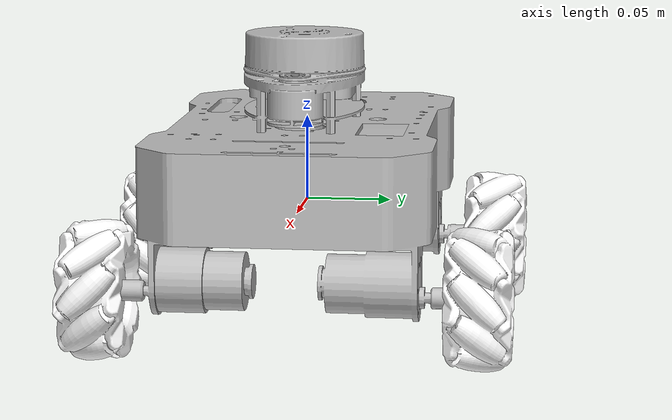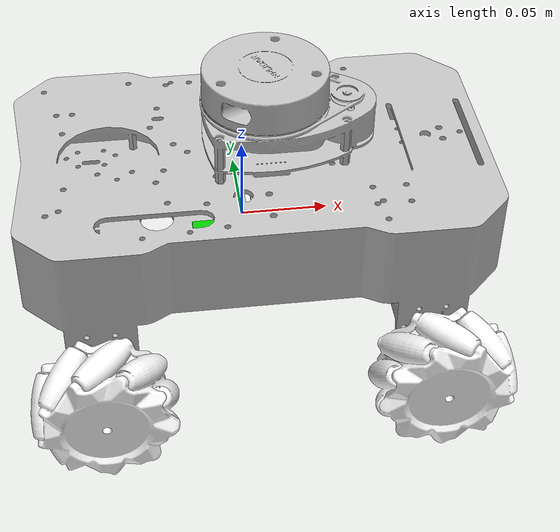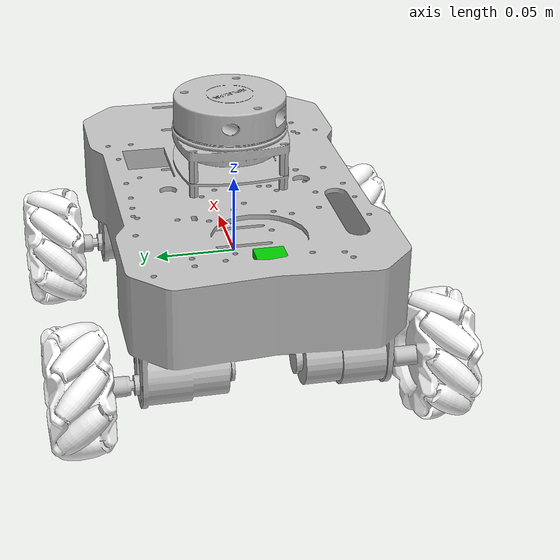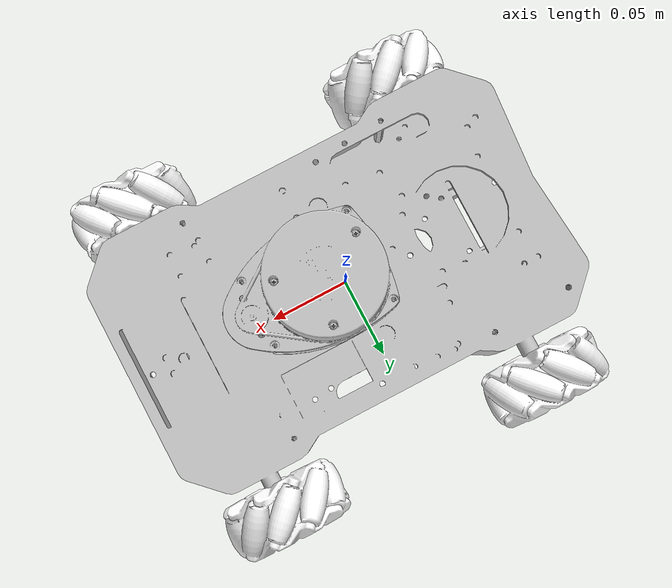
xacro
<?xml version="1.0"?>
<robot name="robmini" xmlns:xacro="http://www.ros.org/wiki/xacro">
    <!-- 添加参数声明 -->
    <xacro:arg name="prefix" default=""/>
    <xacro:arg name="namespace" default=""/>
    <xacro:arg name="use_mock" default="false"/>
    <xacro:arg name="use_gazebo" default="false"/>
    <xacro:arg name="sim_drive_mode" default="planar"/>  <!-- /ros2_control-->
    <xacro:arg name="controller_config" default=""/>

    <!-- 获取参数值 -->
    <xacro:property name="prefix" value="$(arg prefix)" />
    <xacro:property name="ros_namespace" value="$(arg namespace)" />
    <xacro:property name="use_mock" value="$(arg use_mock)" />
    <xacro:property name="use_gazebo" value="$(arg use_gazebo)" />
    <xacro:property name="sim_drive_mode" value="$(arg sim_drive_mode)" />
    <xacro:property name="controller_config" value="$(arg controller_config)" />

    <!-- TF 前缀处理保持不变 -->
    <xacro:if value="${prefix == '/' or prefix == '' or prefix == ' '}">
        <xacro:property name="tf_prefix" value="" />
    </xacro:if>
    <xacro:unless value="${prefix == '/' or prefix == '' or prefix == ' '}">
        <xacro:property name="tf_prefix" value="${prefix}/" />
    </xacro:unless>

    <!-- 使用传统 find 语法 -->
    <xacro:include filename="$(find robmini_description)/urdf/robmini.urdf.xacro" />
    <xacro:include filename="$(find robmini_description)/urdf/lidar_gazebo.xacro" />
    <xacro:include filename="$(find robmini_description)/urdf/robmini.ros2_control.xacro" />
    <!-- 宏调用保持不变 -->
    <xacro:robmini_ros2_control
    use_mock_bool="${str(use_mock).lower() in ['true', '1', 'yes', 'on']}"
    use_gazebo_bool="${str(use_gazebo).lower() in ['true', '1', 'yes', 'on']}"
    sim_drive_mode="${sim_drive_mode}"
    controller_config="${controller_config}"
    ros_namespace="${ros_namespace}"
    frame_prefix="${tf_prefix}" />
</robot>

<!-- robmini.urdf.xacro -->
<robot xmlns:xacro="http://www.ros.org/wiki/xacro">
  <xacro:property name="mesh_dir" value="file://$(find robmini_description)/meshes" />
  <xacro:property
    name="use_planar_drive"
    value="${str(use_gazebo).lower() in ['true', '1', 'yes', 'on'] and sim_drive_mode == 'planar'}" />
  <xacro:property name="planar_wheel_collision_radius" value="0.04" />
  <xacro:property name="wheel_ground_mu" value="${0.02 if use_planar_drive else 1.5}" />
  <xacro:property name="wheel_ground_mu2" value="${0.02 if use_planar_drive else 1.2}" />
  <xacro:property name="wheel_ground_slip" value="${1.0 if use_planar_drive else 0.0}" />

  <link
    name="${tf_prefix}base_link">
    <inertial>
      <origin
        xyz="0.00642718102494587 0.000182152311766697 0.0006273474275044"
        rpy="0 0 0" />
      <mass
        value="0.566394170985771" />
      <inertia
        ixx="0.00105406060554873"
        ixy="1.36846218301613E-05"
        ixz="-7.10562527190778E-06"
        iyy="0.00239067878191228"
        iyz="4.45402070926371E-07"
        izz="0.00328565602241862" />
    </inertial>
    <visual>
      <origin
        xyz="0 0 0"
        rpy="0 0 0" />
      <geometry>
        <mesh filename="${mesh_dir}/base_link.STL" />
      </geometry>
      <material
        name="">
        <color
          rgba="0.752941176470588 0.752941176470588 0.752941176470588 1" />
      </material>
    </visual>
    <collision>
      <origin
        xyz="0 0 0"
        rpy="0 0 0" />
      <geometry>
        <mesh filename="${mesh_dir}/base_link.STL" />
      </geometry>
    </collision>
  </link>
  <link
    name="${tf_prefix}front_left_wheel_link">
    <inertial>
      <origin
        xyz="0 0 0"
        rpy="0 0 0" />
      <mass
        value="0.63948" />
      <inertia
        ixx="0.0025437"
        ixy="2.7123E-05"
        ixz="-0.00010496"
        iyy="0.0053311"
        iyz="1.0534E-05"
        izz="0.006151" />
    </inertial>
    <visual>
      <origin
        xyz="0 0 0"
        rpy="0 0 0" />
      <geometry>
        <mesh filename="${mesh_dir}/left_front_wheel_link.STL" />
      </geometry>
      <material
        name="">
        <color
          rgba="1 1 1 1" />
      </material>
    </visual>
    <collision>
      <origin
        xyz="0 0 0"
        rpy="0 0 0" />
      <geometry>
        <xacro:if value="${use_planar_drive}">
          <sphere radius="${planar_wheel_collision_radius}" />
        </xacro:if>
        <xacro:unless value="${use_planar_drive}">
          <mesh filename="${mesh_dir}/left_front_wheel_link.STL" />
        </xacro:unless>
      </geometry>
    </collision>
  </link>
  <joint
    name="front_left_wheel_joint"
    type="continuous">
    <origin
      xyz="0.098716 0.107 -0.037"
      rpy="0 0 0" />
    <parent
      link="${tf_prefix}base_link" />
    <child
      link="${tf_prefix}front_left_wheel_link" />
    <axis
      xyz="0 1 0" />
  </joint>
  <link
    name="${tf_prefix}rear_left_wheel_link">
    <inertial>
      <origin
        xyz="0 0 0"
        rpy="0 0 0" />
      <mass
        value="0.63948" />
      <inertia
        ixx="0.0025437"
        ixy="2.7123E-05"
        ixz="-0.00010496"
        iyy="0.0053311"
        iyz="1.0534E-05"
        izz="0.006151" />
    </inertial>
    <visual>
      <origin
        xyz="0 0 0"
        rpy="0 0 0" />
      <geometry>
        <mesh filename="${mesh_dir}/left_back_wheel_link.STL" />
      </geometry>
      <material
        name="">
        <color
          rgba="1 1 1 1" />
      </material>
    </visual>
    <collision>
      <origin
        xyz="0 0 0"
        rpy="0 0 0" />
      <geometry>
        <xacro:if value="${use_planar_drive}">
          <sphere radius="${planar_wheel_collision_radius}" />
        </xacro:if>
        <xacro:unless value="${use_planar_drive}">
          <mesh filename="${mesh_dir}/left_back_wheel_link.STL" />
        </xacro:unless>
      </geometry>
    </collision>
  </link>
  <joint
    name="rear_left_wheel_joint"
    type="continuous">
    <origin
      xyz="-0.086284 0.107 -0.037"
      rpy="0 0 0" />
    <parent
      link="${tf_prefix}base_link" />
    <child
      link="${tf_prefix}rear_left_wheel_link" />
    <axis
      xyz="0 1 0" />
  </joint>
  <link
    name="${tf_prefix}rear_right_wheel_link">
    <inertial>
      <origin
        xyz="0 0 0"
        rpy="0 0 0" />
      <mass
        value="0.63948" />
      <inertia
        ixx="0.0025437"
        ixy="2.7123E-05"
        ixz="-0.00010496"
        iyy="0.0053311"
        iyz="1.0534E-05"
        izz="0.006151" />
    </inertial>
    <visual>
      <origin
        xyz="0 0 0"
        rpy="0 0 0" />
      <geometry>
        <mesh filename="${mesh_dir}/right_back_wheel_link.STL" />
      </geometry>
      <material
        name="">
        <color
          rgba="1 1 1 1" />
      </material>
    </visual>
    <collision>
      <origin
        xyz="0 0 0"
        rpy="0 0 0" />
      <geometry>
        <xacro:if value="${use_planar_drive}">
          <sphere radius="${planar_wheel_collision_radius}" />
        </xacro:if>
        <xacro:unless value="${use_planar_drive}">
          <mesh filename="${mesh_dir}/right_back_wheel_link.STL" />
        </xacro:unless>
      </geometry>
    </collision>
  </link>
  <joint
    name="rear_right_wheel_joint"
    type="continuous">
    <origin
      xyz="-0.086284 -0.107 -0.037"
      rpy="0 0 0" />
    <parent
      link="${tf_prefix}base_link" />
    <child
      link="${tf_prefix}rear_right_wheel_link" />
    <axis
      xyz="0 1 0" />
  </joint>
  <link
    name="${tf_prefix}front_right_wheel_link">
    <inertial>
      <origin
        xyz="0 0 0"
        rpy="0 0 0" />
      <mass
        value="0.63948" />
      <inertia
        ixx="0.0025437"
        ixy="2.7123E-05"
        ixz="-0.00010496"
        iyy="0.0053311"
        iyz="1.0534E-05"
        izz="0.006151" />
    </inertial>
    <visual>
      <origin
        xyz="0 0 0"
        rpy="0 0 0" />
      <geometry>
        <mesh filename="${mesh_dir}/right_front_wheel_link.STL" />
      </geometry>
      <material
        name="">
        <color
          rgba="1 1 1 1" />
      </material>
    </visual>
    <collision>
      <origin
        xyz="0 0 0"
        rpy="0 0 0" />
      <geometry>
        <xacro:if value="${use_planar_drive}">
          <sphere radius="${planar_wheel_collision_radius}" />
        </xacro:if>
        <xacro:unless value="${use_planar_drive}">
          <mesh filename="${mesh_dir}/right_front_wheel_link.STL" />
        </xacro:unless>
      </geometry>
    </collision>
  </link>
  <joint
    name="front_right_wheel_joint"
    type="continuous">
    <origin
      xyz="0.098716 -0.107 -0.037"
      rpy="0 0 0" />
    <parent
      link="${tf_prefix}base_link" />
    <child
      link="${tf_prefix}front_right_wheel_link" />
    <axis
      xyz="0 1 0" />
  </joint>
  <link
    name="${tf_prefix}laser">
    <inertial>
      <origin
        xyz="0.01206 -0.00053201 -0.0083649"
        rpy="0 0 0" />
      <mass
        value="0.073085" />
      <inertia
        ixx="1.9581E-05"
        ixy="-1.04E-07"
        ixz="-4.284E-07"
        iyy="2.4125E-05"
        iyz="9.3841E-09"
        izz="4.1419E-05" />
    </inertial>
    <visual>
      <origin
        xyz="0 0 0"
        rpy="0 0 0" />
      <geometry>
        <mesh filename="${mesh_dir}/lidar_link.STL" />
      </geometry>
      <material
        name="">
        <color
          rgba="0.75294 0.75294 0.75294 1" />
      </material>
    </visual>
    <collision>
      <origin
        xyz="0 0 0"
        rpy="0 0 0" />
      <geometry>
        <mesh filename="${mesh_dir}/lidar_link.STL" />
      </geometry>
    </collision>
  </link>
  <joint
    name="lidar_joint"
    type="fixed">
    <origin
      xyz="0.013095 0 0.0811"
      rpy="0 0 0" />
    <parent
      link="${tf_prefix}base_link" />
    <child
      link="${tf_prefix}laser" />
    <axis
      xyz="0 0 0" />
  </joint>

  <link
    name="${tf_prefix}imu_link">
    <inertial>
      <!-- IMU 质量和惯性随便给一个小的，不影响 kinematics，只是占位 -->
      <origin xyz="0 0 0" rpy="0 0 0" />
      <mass value="0.01" />
      <inertia
        ixx="1e-6" ixy="0.0"  ixz="0.0"
        iyy="1e-6" iyz="0.0"
        izz="1e-6" />
    </inertial>
    <!-- 视觉上画一个小绿块表示 IMU 位置 -->
    <visual>
      <origin xyz="0 0 0" rpy="0 0 0" />
      <geometry>
        <box size="0.02 0.02 0.01" />
      </geometry>
      <material name="imu_green">
        <color rgba="0.0 0.8 0.0 1.0" />
      </material>
    </visual>
    <collision>
      <origin xyz="0 0 0" rpy="0 0 0" />
      <geometry>
        <box size="0.02 0.02 0.01" />
      </geometry>
    </collision>
  </link>
  <!-- IMU 固定在 base_link 上，略偏右下角 -->
  <joint name="imu_joint" type="fixed">
    <!-- 这里的 xyz 就是 IMU 在 base_link 下的位置，单位：米 -->
    <origin xyz="-0.02 -0.02 0" rpy="0 0 0" />
    <parent link="${tf_prefix}base_link" />
    <child  link="${tf_prefix}imu_link" />
    <axis xyz="0 0 0" />
  </joint>

  <gazebo reference="${tf_prefix}base_link">
    <material>Gazebo/Grey</material>
  </gazebo>
  <gazebo reference="${tf_prefix}front_left_wheel_link">
    <collision>
        <surface>
        <friction>
            <ode>
            <mu>${wheel_ground_mu}</mu>
            <mu2>${wheel_ground_mu2}</mu2>
            <fdir1>1 -1 0</fdir1>
            <slip1>${wheel_ground_slip}</slip1>
            <slip2>${wheel_ground_slip}</slip2>
            </ode>
        </friction>
        </surface>
    </collision>
  </gazebo>
  <gazebo reference="${tf_prefix}rear_left_wheel_link">
    <collision>
        <surface>
        <friction>
            <ode>
            <mu>${wheel_ground_mu}</mu>
            <mu2>${wheel_ground_mu2}</mu2>
            <fdir1>1 1 0</fdir1>
            <slip1>${wheel_ground_slip}</slip1>
            <slip2>${wheel_ground_slip}</slip2>
            </ode>
        </friction>
        </surface>
    </collision>
  </gazebo>
  <gazebo reference="${tf_prefix}front_right_wheel_link">
    <collision>
        <surface>
        <friction>
            <ode>
            <mu>${wheel_ground_mu}</mu>
            <mu2>${wheel_ground_mu2}</mu2>
            <fdir1>1 1 0</fdir1>
            <slip1>${wheel_ground_slip}</slip1>
            <slip2>${wheel_ground_slip}</slip2>
            </ode>
        </friction>
        </surface>
    </collision>
  </gazebo>
  <gazebo reference="${tf_prefix}rear_right_wheel_link">
    <collision>
        <surface>
        <friction>
            <ode>
            <mu>${wheel_ground_mu}</mu>
            <mu2>${wheel_ground_mu2}</mu2>
            <fdir1>1 -1 0</fdir1>
            <slip1>${wheel_ground_slip}</slip1>
            <slip2>${wheel_ground_slip}</slip2>
            </ode>
        </friction>
        </surface>
    </collision>
  </gazebo>

</robot>
